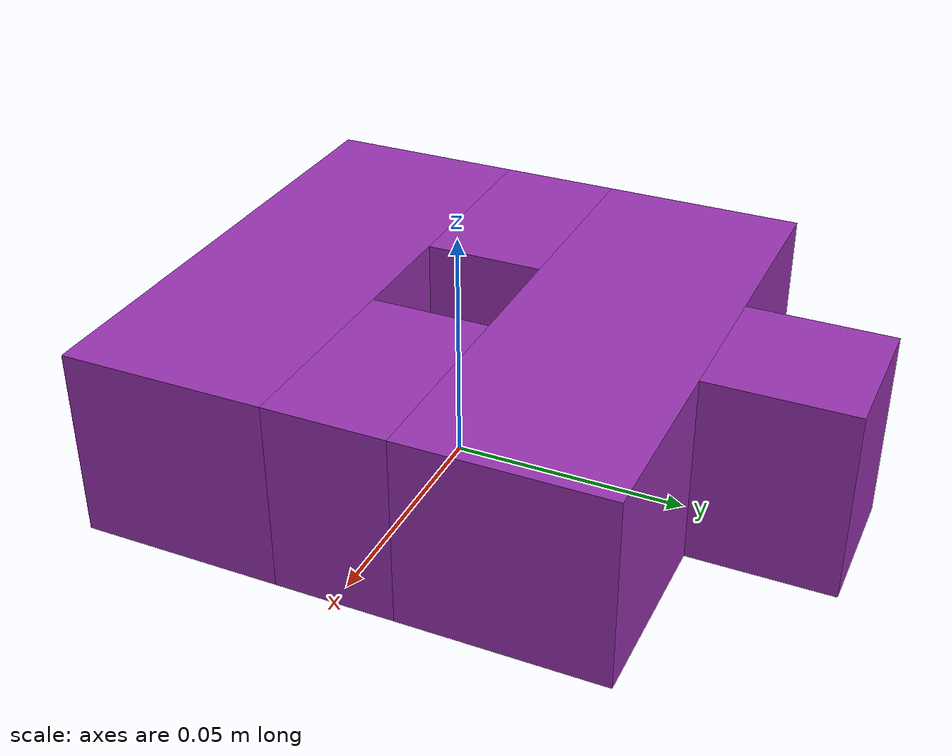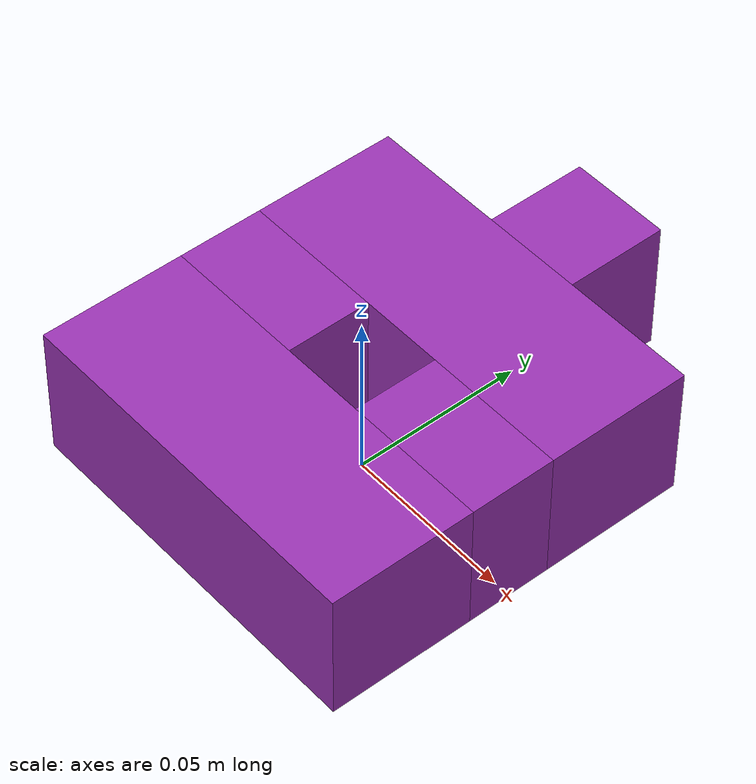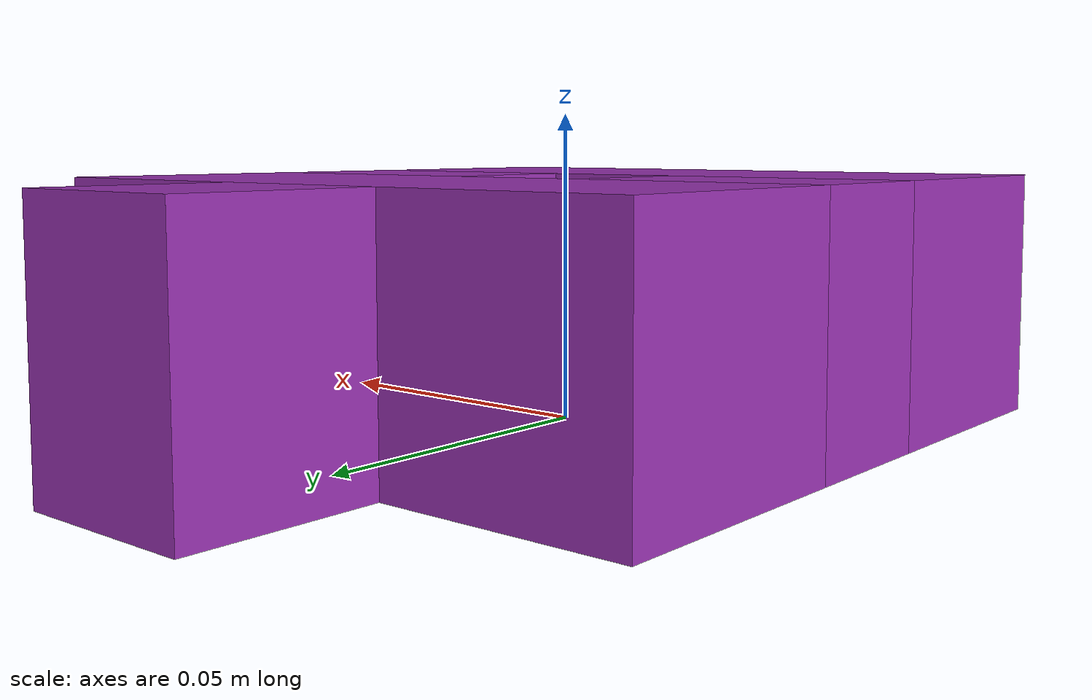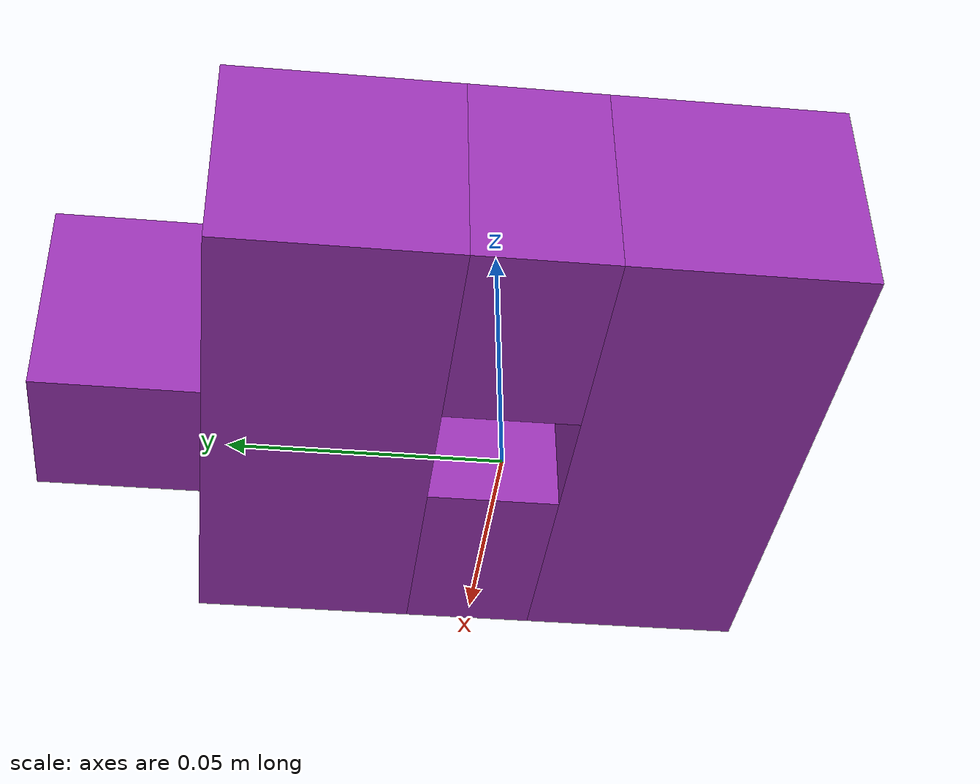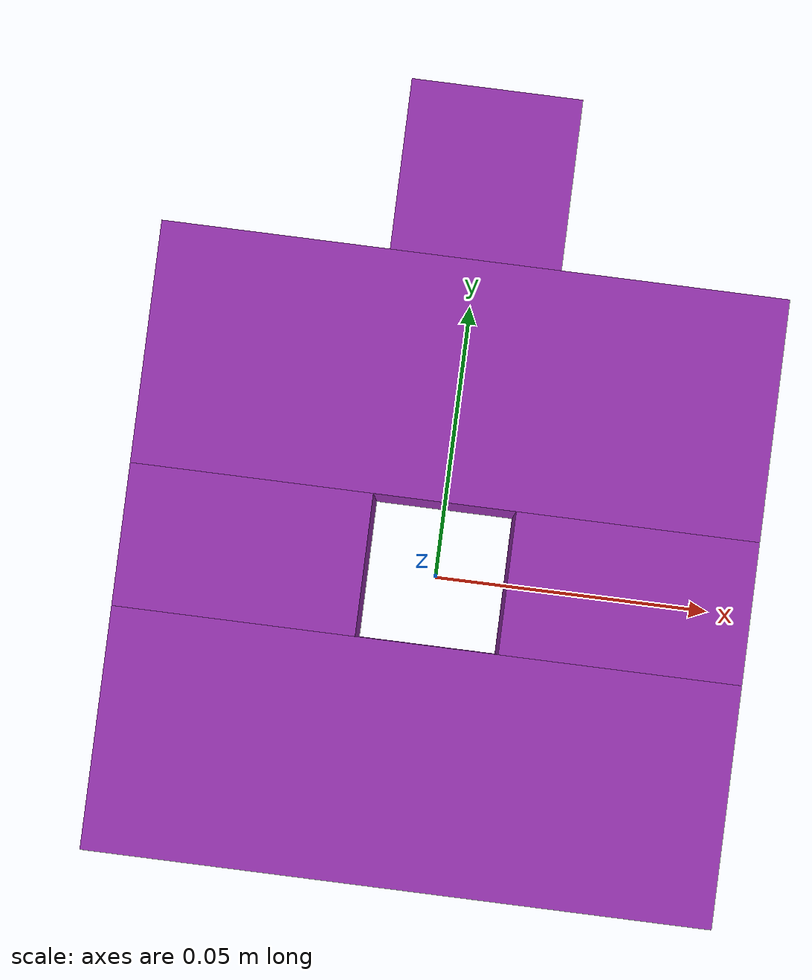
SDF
<?xml version="1.0" encoding="utf-8"?>
<!-- |    This document was autogenerated by xacro from model.xacro                    | -->
<!-- |    EDITING THIS FILE BY HAND IS NOT RECOMMENDED                                 | -->
<sdf version="1.5" xmlns:xacro="http://www.ros.org/wiki/xacro">
  <!-- properties width, model, and material must be defined before including this file -->
  <model name="ring_3">
    <link name="hanoi_ring_3">
      <velocity_decay>
        <linear>0.01</linear>
        <angular>1.0</angular>
      </velocity_decay>
      <visual name="part_T">
        <pose>0 0.03375 0.02 0 0 0</pose>
        <geometry>
          <box>
            <size>0.11 0.0425 0.04</size>
          </box>
        </geometry>
        <material>
          <script>
            <name>Gazebo/Purple</name>
          </script>
        </material>
      </visual>
      <collision name="part_T">
        <pose>0 0.03375 0.02 0 0 0</pose>
        <geometry>
          <box>
            <size>0.11 0.0425 0.04</size>
          </box>
        </geometry>
        <surface>
          <bounce>
            <restitution_coefficient>0.0</restitution_coefficient>
          </bounce>
          <friction>
            <ode>
              <mu>1</mu>
              <mu2>1</mu2>
            </ode>
          </friction>
          <contact>
            <ode>
              <max_vel>0.01</max_vel>
              <min_depth>0.001</min_depth>
            </ode>
          </contact>
        </surface>
      </collision>
      <visual name="part_B">
        <pose>0 -0.03375 0.02 0 0 0</pose>
        <geometry>
          <box>
            <size>0.11 0.0425 0.04</size>
          </box>
        </geometry>
        <material>
          <script>
            <name>Gazebo/Purple</name>
          </script>
        </material>
      </visual>
      <collision name="part_B">
        <pose>0 -0.03375 0.02 0 0 0</pose>
        <geometry>
          <box>
            <size>0.11 0.0425 0.04</size>
          </box>
        </geometry>
        <surface>
          <bounce>
            <restitution_coefficient>0.0</restitution_coefficient>
          </bounce>
          <friction>
            <ode>
              <mu>1</mu>
              <mu2>1</mu2>
            </ode>
          </friction>
          <contact>
            <ode>
              <max_vel>0.01</max_vel>
              <min_depth>0.001</min_depth>
            </ode>
          </contact>
        </surface>
      </collision>
      <visual name="part_L">
        <pose>-0.03375 0 0.02 0 0 0</pose>
        <geometry>
          <box>
            <size>0.0425 0.025 0.04</size>
          </box>
        </geometry>
        <material>
          <script>
            <name>Gazebo/Purple</name>
          </script>
        </material>
      </visual>
      <collision name="part_L">
        <pose>-0.03375 0 0.02 0 0 0</pose>
        <geometry>
          <box>
            <size>0.0425 0.025 0.04</size>
          </box>
        </geometry>
        <surface>
          <bounce>
            <restitution_coefficient>0.0</restitution_coefficient>
          </bounce>
          <friction>
            <ode>
              <mu>1</mu>
              <mu2>1</mu2>
            </ode>
          </friction>
          <contact>
            <ode>
              <max_vel>0.01</max_vel>
              <min_depth>0.001</min_depth>
            </ode>
          </contact>
        </surface>
      </collision>
      <visual name="part_R">
        <pose>0.03375 0 0.02 0 0 0</pose>
        <geometry>
          <box>
            <size>0.0425 0.025 0.04</size>
          </box>
        </geometry>
        <material>
          <script>
            <name>Gazebo/Purple</name>
          </script>
        </material>
      </visual>
      <collision name="part_R">
        <pose>0.03375 0 0.02 0 0 0</pose>
        <geometry>
          <box>
            <size>0.0425 0.025 0.04</size>
          </box>
        </geometry>
        <surface>
          <bounce>
            <restitution_coefficient>0.0</restitution_coefficient>
          </bounce>
          <friction>
            <ode>
              <mu>1</mu>
              <mu2>1</mu2>
            </ode>
          </friction>
          <contact>
            <ode>
              <max_vel>0.01</max_vel>
              <min_depth>0.001</min_depth>
            </ode>
          </contact>
        </surface>
      </collision>
      <visual name="part_H">
        <pose>0 0.07 0.02 0 0 0</pose>
        <geometry>
          <box>
            <size>0.03 0.03 0.04</size>
          </box>
        </geometry>
        <material>
          <script>
            <name>Gazebo/Purple</name>
          </script>
        </material>
      </visual>
      <collision name="part_H">
        <pose>0 0.07 0.02 0 0 0</pose>
        <geometry>
          <box>
            <size>0.03 0.03 0.04</size>
          </box>
        </geometry>
        <surface>
          <bounce>
            <restitution_coefficient>0.0</restitution_coefficient>
          </bounce>
          <friction>
            <ode>
              <mu>1</mu>
              <mu2>1</mu2>
            </ode>
          </friction>
          <contact>
            <ode>
              <max_vel>0.01</max_vel>
              <min_depth>0.001</min_depth>
            </ode>
          </contact>
        </surface>
      </collision>
      <!-- the handle part -->
      <inertial name="inertia">
        <pose>0 0 0.02 0 0 0</pose>
        <mass>0.02</mass>
        <inertia>
          <ixx>6.62916666667e-05</ixx>
          <iyy>6.62916666667e-05</iyy>
          <izz>0.00012725</izz>
          <ixy>0</ixy>
          <ixz>0</ixz>
          <iyz>0</iyz>
        </inertia>
      </inertial>
    </link>
  </model>
</sdf>
